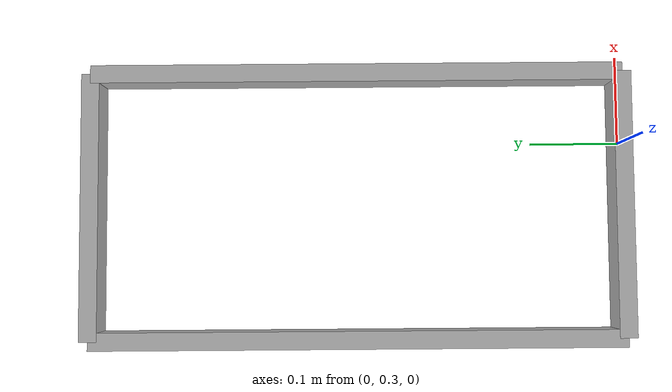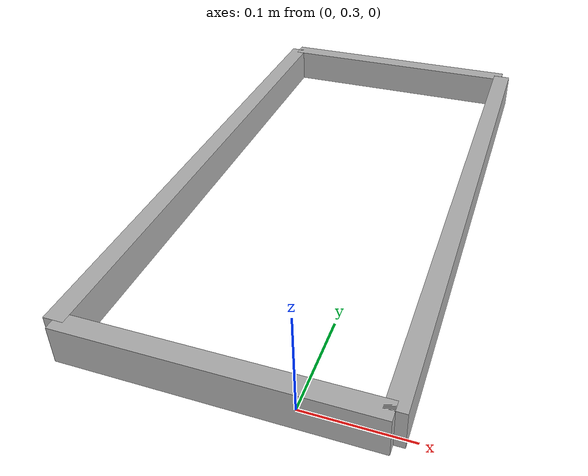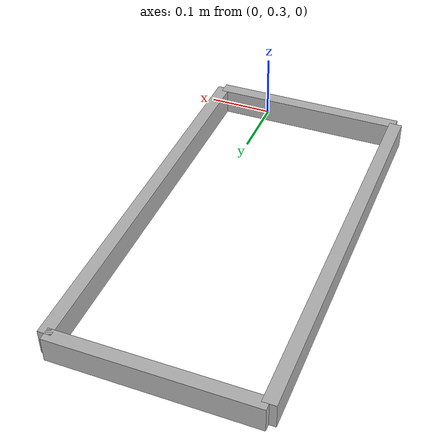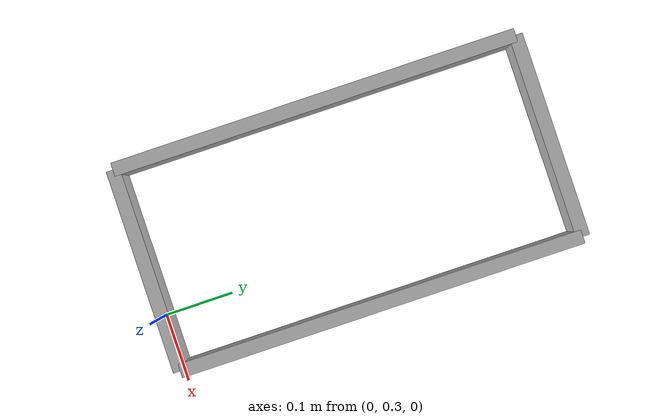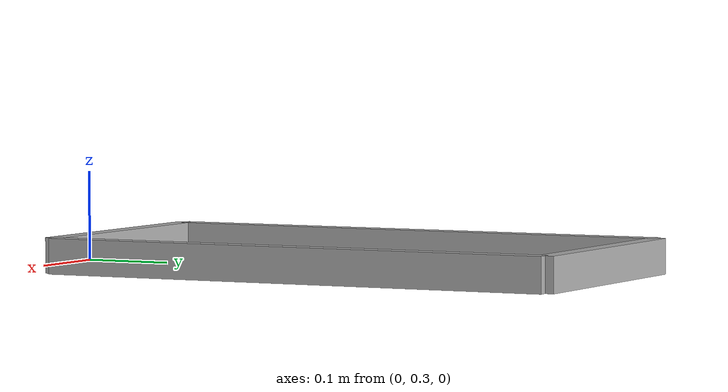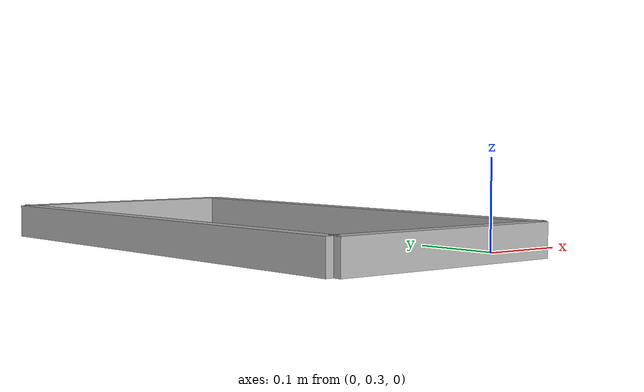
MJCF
<mujoco>
    <worldbody>
        <body name="bin_left_wall" pos="-0.22 0.6 0.01">
            <geom type="box" size="0.01 0.3 0.02" pos="0 0 0" rgba="0.7 0.7 0.7 1" name="bin_left_wall_geom" />
        </body>

        <body name="bin_right_wall" pos="0.08 0.6 0.01">
            <geom type="box" size="0.01 0.3 0.02" pos="0 0 0" rgba="0.7 0.7 0.7 1" name="bin_right_wall_geom" />
        </body>

        <body name="bin_front_wall" pos="-0.07 0.3 0.01">
            <geom type="box" size="0.15 0.01 0.02" pos="0 0 0" rgba="0.7 0.7 0.7 1" name="bin_front_wall_geom" />
        </body>

        <body name="bin_back_wall" pos="-0.07 0.9 0.01">
            <geom type="box" size="0.15 0.01 0.02" pos="0 0 0" rgba="0.7 0.7 0.7 1" name="bin_back_wall_geom" />
        </body>
    </worldbody>
</mujoco>
